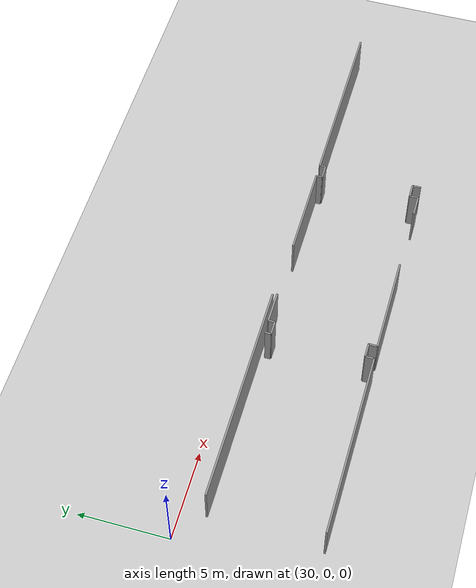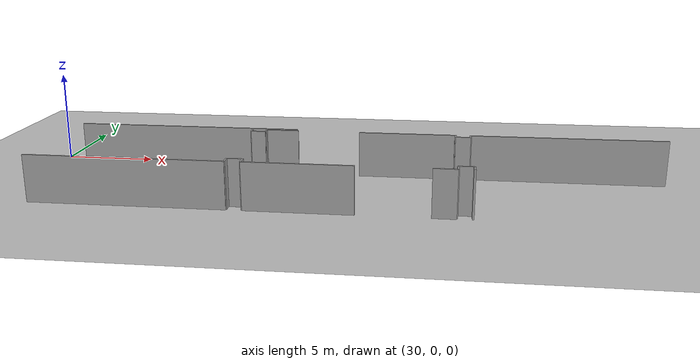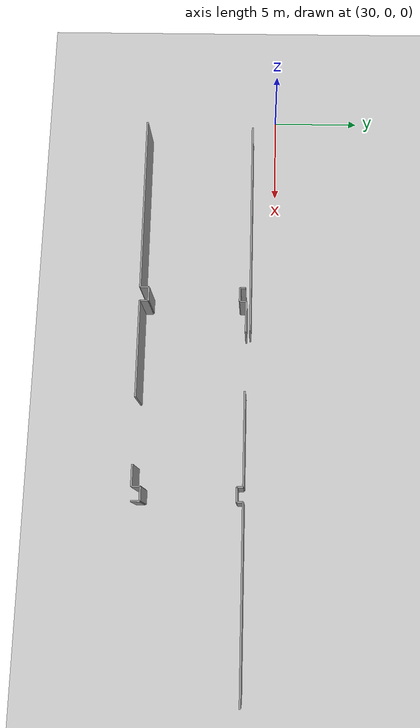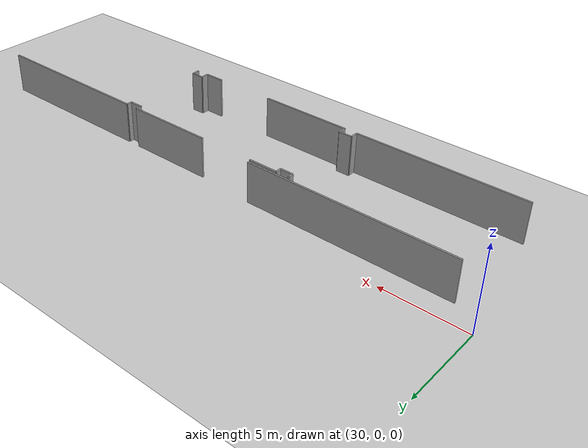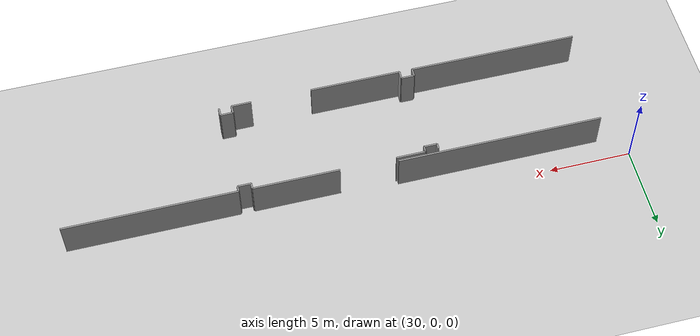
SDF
<sdf version="1.6">
 <world name="default">
  <model name="ground_plane">
   <static>1</static>
   <link name="link">
    <collision name="collision">
     <geometry><plane><normal>0 0 1</normal><size>100 100</size></plane></geometry>
     <surface><friction><ode><mu>100</mu><mu2>50</mu2></ode></friction></surface>
    </collision>
    <visual name="visual">
     <cast_shadows>0</cast_shadows>
     <geometry><plane><normal>0 0 1</normal><size>100 100</size></plane></geometry>
     <material>
      <script><uri>file://media/materials/scripts/gazebo.material</uri><name>Gazebo/Grey</name></script>
     </material>
    </visual>
   </link>
  </model>
  <model name="50015847">
   <static>1</static>
   <link name="Wall_572">
    <collision name="Wall_572_Collision">
     <geometry><box><size>12.5054662675 0.1 2.5</size></box></geometry>
     <pose>6.25273313374 0 1.25 0 0 0</pose>
    </collision>
    <visual name="Wall_572_Visual">
     <pose>6.25273313374 0 1.25 0 0 0</pose>
     <geometry><box><size>12.5054662675 0.1 2.5</size></box></geometry>
     <material>
      <script><uri>file://media/materials/scripts/gazebo.material</uri><name>Gazebo/Grey</name></script>
      <ambient>1 1 1 1</ambient>
     </material>
    </visual>
    <pose>176.514211624 -45.3005033813 0 0 0 -3.14138935611</pose>
   </link>
   <link name="Wall_1144">
    <collision name="Wall_1144_Collision">
     <geometry><box><size>0.332536736665 0.1 2.5</size></box></geometry>
     <pose>0.166268368333 0 1.25 0 0 0</pose>
    </collision>
    <visual name="Wall_1144_Visual">
     <pose>0.166268368333 0 1.25 0 0 0</pose>
     <geometry><box><size>0.332536736665 0.1 2.5</size></box></geometry>
     <material>
      <script><uri>file://media/materials/scripts/gazebo.material</uri><name>Gazebo/Grey</name></script>
      <ambient>1 1 1 1</ambient>
     </material>
    </visual>
    <pose>174.016372604 -45.5656683785 0 0 0 -1.57079632679</pose>
   </link>
   <link name="Wall_1145">
    <collision name="Wall_1145_Collision">
     <geometry><box><size>0.794986525652 0.1 2.5</size></box></geometry>
     <pose>0.397493262826 0 1.25 0 0 0</pose>
    </collision>
    <visual name="Wall_1145_Visual">
     <pose>0.397493262826 0 1.25 0 0 0</pose>
     <geometry><box><size>0.794986525652 0.1 2.5</size></box></geometry>
     <material>
      <script><uri>file://media/materials/scripts/gazebo.material</uri><name>Gazebo/Grey</name></script>
      <ambient>1 1 1 1</ambient>
     </material>
    </visual>
    <pose>174.016372604 -45.8982051152 0 0 0 0.0</pose>
   </link>
   <link name="Wall_1146">
    <collision name="Wall_1146_Collision">
     <geometry><box><size>0.361519296283 0.1 2.5</size></box></geometry>
     <pose>0.180759648142 0 1.25 0 0 0</pose>
    </collision>
    <visual name="Wall_1146_Visual">
     <pose>0.180759648142 0 1.25 0 0 0</pose>
     <geometry><box><size>0.361519296283 0.1 2.5</size></box></geometry>
     <material>
      <script><uri>file://media/materials/scripts/gazebo.material</uri><name>Gazebo/Grey</name></script>
      <ambient>1 1 1 1</ambient>
     </material>
    </visual>
    <pose>174.81135913 -45.8982051152 0 0 0 1.57079632679</pose>
   </link>
   <link name="Wall_1147">
    <collision name="Wall_1147_Collision">
     <geometry><box><size>1.79208826969 0.1 2.5</size></box></geometry>
     <pose>0.896044134845 0 1.25 0 0 0</pose>
    </collision>
    <visual name="Wall_1147_Visual">
     <pose>0.896044134845 0 1.25 0 0 0</pose>
     <geometry><box><size>1.79208826969 0.1 2.5</size></box></geometry>
     <material>
      <script><uri>file://media/materials/scripts/gazebo.material</uri><name>Gazebo/Grey</name></script>
      <ambient>1 1 1 1</ambient>
     </material>
    </visual>
    <pose>174.81135913 -45.5366858189 0 0 0 0.0</pose>
   </link>
   <link name="Wall_1148">
    <collision name="Wall_1148_Collision">
     <geometry><box><size>5.24533482483 0.1 2.5</size></box></geometry>
     <pose>2.62266741242 0 1.25 0 0 0</pose>
    </collision>
    <visual name="Wall_1148_Visual">
     <pose>2.62266741242 0 1.25 0 0 0</pose>
     <geometry><box><size>5.24533482483 0.1 2.5</size></box></geometry>
     <material>
      <script><uri>file://media/materials/scripts/gazebo.material</uri><name>Gazebo/Grey</name></script>
      <ambient>1 1 1 1</ambient>
     </material>
    </visual>
    <pose>180.000762699 -45.5366858189 0 0 0 0.0</pose>
   </link>
   <link name="Wall_1149">
    <collision name="Wall_1149_Collision">
     <geometry><box><size>0.345756851579 0.1 2.5</size></box></geometry>
     <pose>0.172878425789 0 1.25 0 0 0</pose>
    </collision>
    <visual name="Wall_1149_Visual">
     <pose>0.172878425789 0 1.25 0 0 0</pose>
     <geometry><box><size>0.345756851579 0.1 2.5</size></box></geometry>
     <material>
      <script><uri>file://media/materials/scripts/gazebo.material</uri><name>Gazebo/Grey</name></script>
      <ambient>1 1 1 1</ambient>
     </material>
    </visual>
    <pose>185.246097524 -45.5366858189 0 0 0 -1.57079632679</pose>
   </link>
   <link name="Wall_1150">
    <collision name="Wall_1150_Collision">
     <geometry><box><size>0.806172776733 0.1 2.5</size></box></geometry>
     <pose>0.403086388366 0 1.25 0 0 0</pose>
    </collision>
    <visual name="Wall_1150_Visual">
     <pose>0.403086388366 0 1.25 0 0 0</pose>
     <geometry><box><size>0.806172776733 0.1 2.5</size></box></geometry>
     <material>
      <script><uri>file://media/materials/scripts/gazebo.material</uri><name>Gazebo/Grey</name></script>
      <ambient>1 1 1 1</ambient>
     </material>
    </visual>
    <pose>185.246097524 -45.8824426705 0 0 0 0.0</pose>
   </link>
   <link name="Wall_1151">
    <collision name="Wall_1151_Collision">
     <geometry><box><size>0.340672191997 0.1 2.5</size></box></geometry>
     <pose>0.170336095998 0 1.25 0 0 0</pose>
    </collision>
    <visual name="Wall_1151_Visual">
     <pose>0.170336095998 0 1.25 0 0 0</pose>
     <geometry><box><size>0.340672191997 0.1 2.5</size></box></geometry>
     <material>
      <script><uri>file://media/materials/scripts/gazebo.material</uri><name>Gazebo/Grey</name></script>
      <ambient>1 1 1 1</ambient>
     </material>
    </visual>
    <pose>186.052270301 -45.8824426705 0 0 0 1.57079632679</pose>
   </link>
   <link name="Wall_1152">
    <collision name="Wall_1152_Collision">
     <geometry><box><size>10.40194234 0.1 2.5</size></box></geometry>
     <pose>5.20097116998 0 1.25 0 0 0</pose>
    </collision>
    <visual name="Wall_1152_Visual">
     <pose>5.20097116998 0 1.25 0 0 0</pose>
     <geometry><box><size>10.40194234 0.1 2.5</size></box></geometry>
     <material>
      <script><uri>file://media/materials/scripts/gazebo.material</uri><name>Gazebo/Grey</name></script>
      <ambient>1 1 1 1</ambient>
     </material>
    </visual>
    <pose>186.052270301 -45.5417704785 0 0 0 0.0</pose>
   </link>
   <link name="Wall_1215">
    <collision name="Wall_1215_Collision">
     <geometry><box><size>0.493211979458 0.1 2.5</size></box></geometry>
     <pose>0.246605989729 0 1.25 0 0 0</pose>
    </collision>
    <visual name="Wall_1215_Visual">
     <pose>0.246605989729 0 1.25 0 0 0</pose>
     <geometry><box><size>0.493211979458 0.1 2.5</size></box></geometry>
     <material>
      <script><uri>file://media/materials/scripts/gazebo.material</uri><name>Gazebo/Grey</name></script>
      <ambient>1 1 1 1</ambient>
     </material>
    </visual>
    <pose>186.041084049 -51.5589566279 0 0 0 1.57079632679</pose>
   </link>
   <link name="Wall_1216">
    <collision name="Wall_1216_Collision">
     <geometry><box><size>0.77286825647 0.1 2.5</size></box></geometry>
     <pose>0.386434128235 0 1.25 0 0 0</pose>
    </collision>
    <visual name="Wall_1216_Visual">
     <pose>0.386434128235 0 1.25 0 0 0</pose>
     <geometry><box><size>0.77286825647 0.1 2.5</size></box></geometry>
     <material>
      <script><uri>file://media/materials/scripts/gazebo.material</uri><name>Gazebo/Grey</name></script>
      <ambient>1 1 1 1</ambient>
     </material>
    </visual>
    <pose>186.041084049 -51.0657446484 0 0 0 3.14159265359</pose>
   </link>
   <link name="Wall_1217">
    <collision name="Wall_1217_Collision">
     <geometry><box><size>0.483805359231 0.1 2.5</size></box></geometry>
     <pose>0.241902679616 0 1.25 0 0 0</pose>
    </collision>
    <visual name="Wall_1217_Visual">
     <pose>0.241902679616 0 1.25 0 0 0</pose>
     <geometry><box><size>0.483805359231 0.1 2.5</size></box></geometry>
     <material>
      <script><uri>file://media/materials/scripts/gazebo.material</uri><name>Gazebo/Grey</name></script>
      <ambient>1 1 1 1</ambient>
     </material>
    </visual>
    <pose>185.268215793 -51.0657446484 0 0 0 -1.57079632679</pose>
   </link>
   <link name="Wall_1218">
    <collision name="Wall_1218_Collision">
     <geometry><box><size>1.2007423603 0.1 2.5</size></box></geometry>
     <pose>0.600371180149 0 1.25 0 0 0</pose>
    </collision>
    <visual name="Wall_1218_Visual">
     <pose>0.600371180149 0 1.25 0 0 0</pose>
     <geometry><box><size>1.2007423603 0.1 2.5</size></box></geometry>
     <material>
      <script><uri>file://media/materials/scripts/gazebo.material</uri><name>Gazebo/Grey</name></script>
      <ambient>1 1 1 1</ambient>
     </material>
    </visual>
    <pose>185.268215793 -51.5495500076 0 0 0 3.14159265359</pose>
   </link>
   <link name="Wall_1219">
    <collision name="Wall_1219_Collision">
     <geometry><box><size>5.55549905934 0.1 2.5</size></box></geometry>
     <pose>2.77774952967 0 1.25 0 0 0</pose>
    </collision>
    <visual name="Wall_1219_Visual">
     <pose>2.77774952967 0 1.25 0 0 0</pose>
     <geometry><box><size>5.55549905934 0.1 2.5</size></box></geometry>
     <material>
      <script><uri>file://media/materials/scripts/gazebo.material</uri><name>Gazebo/Grey</name></script>
      <ambient>1 1 1 1</ambient>
     </material>
    </visual>
    <pose>180.376010576 -51.5495500076 0 0 0 3.14159265359</pose>
   </link>
   <link name="Wall_1220">
    <collision name="Wall_1220_Collision">
     <geometry><box><size>0.48711038796 0.1 2.5</size></box></geometry>
     <pose>0.24355519398 0 1.25 0 0 0</pose>
    </collision>
    <visual name="Wall_1220_Visual">
     <pose>0.24355519398 0 1.25 0 0 0</pose>
     <geometry><box><size>0.48711038796 0.1 2.5</size></box></geometry>
     <material>
      <script><uri>file://media/materials/scripts/gazebo.material</uri><name>Gazebo/Grey</name></script>
      <ambient>1 1 1 1</ambient>
     </material>
    </visual>
    <pose>174.820511517 -51.5495500076 0 0 0 1.57079632679</pose>
   </link>
   <link name="Wall_1221">
    <collision name="Wall_1221_Collision">
     <geometry><box><size>0.802867748004 0.1 2.5</size></box></geometry>
     <pose>0.401433874002 0 1.25 0 0 0</pose>
    </collision>
    <visual name="Wall_1221_Visual">
     <pose>0.401433874002 0 1.25 0 0 0</pose>
     <geometry><box><size>0.802867748004 0.1 2.5</size></box></geometry>
     <material>
      <script><uri>file://media/materials/scripts/gazebo.material</uri><name>Gazebo/Grey</name></script>
      <ambient>1 1 1 1</ambient>
     </material>
    </visual>
    <pose>174.820511517 -51.0624396197 0 0 0 3.14159265359</pose>
   </link>
   <link name="Wall_1222">
    <collision name="Wall_1222_Collision">
     <geometry><box><size>0.487364620939 0.1 2.5</size></box></geometry>
     <pose>0.243682310469 0 1.25 0 0 0</pose>
    </collision>
    <visual name="Wall_1222_Visual">
     <pose>0.243682310469 0 1.25 0 0 0</pose>
     <geometry><box><size>0.487364620939 0.1 2.5</size></box></geometry>
     <material>
      <script><uri>file://media/materials/scripts/gazebo.material</uri><name>Gazebo/Grey</name></script>
      <ambient>1 1 1 1</ambient>
     </material>
    </visual>
    <pose>174.017643769 -51.0624396197 0 0 0 -1.57079632679</pose>
   </link>
   <link name="Wall_1223">
    <collision name="Wall_1223_Collision">
     <geometry><box><size>10.3050795749 0.1 2.5</size></box></geometry>
     <pose>5.15253978746 0 1.25 0 0 0</pose>
    </collision>
    <visual name="Wall_1223_Visual">
     <pose>5.15253978746 0 1.25 0 0 0</pose>
     <geometry><box><size>10.3050795749 0.1 2.5</size></box></geometry>
     <material>
      <script><uri>file://media/materials/scripts/gazebo.material</uri><name>Gazebo/Grey</name></script>
      <ambient>1 1 1 1</ambient>
     </material>
    </visual>
    <pose>174.017643769 -51.5498042406 0 0 0 3.14159265359</pose>
   </link>
   <pose>-132.35 43.9162226064 0 0 0 0</pose>
  </model>
 </world>
</sdf>
